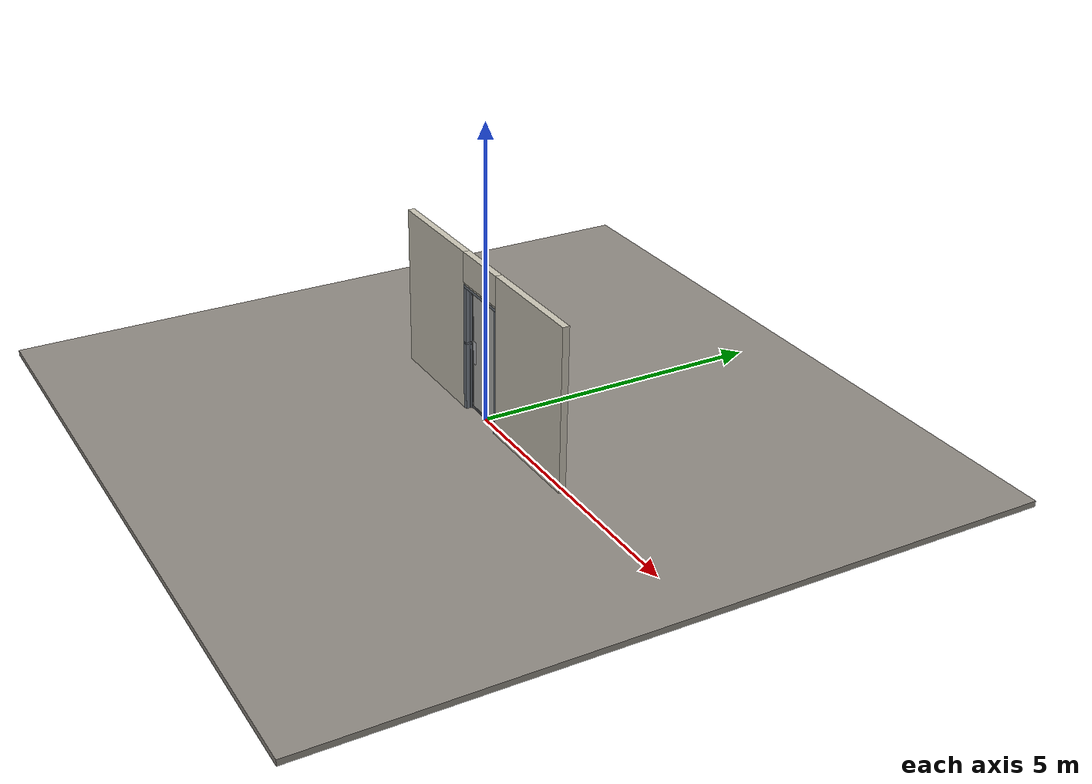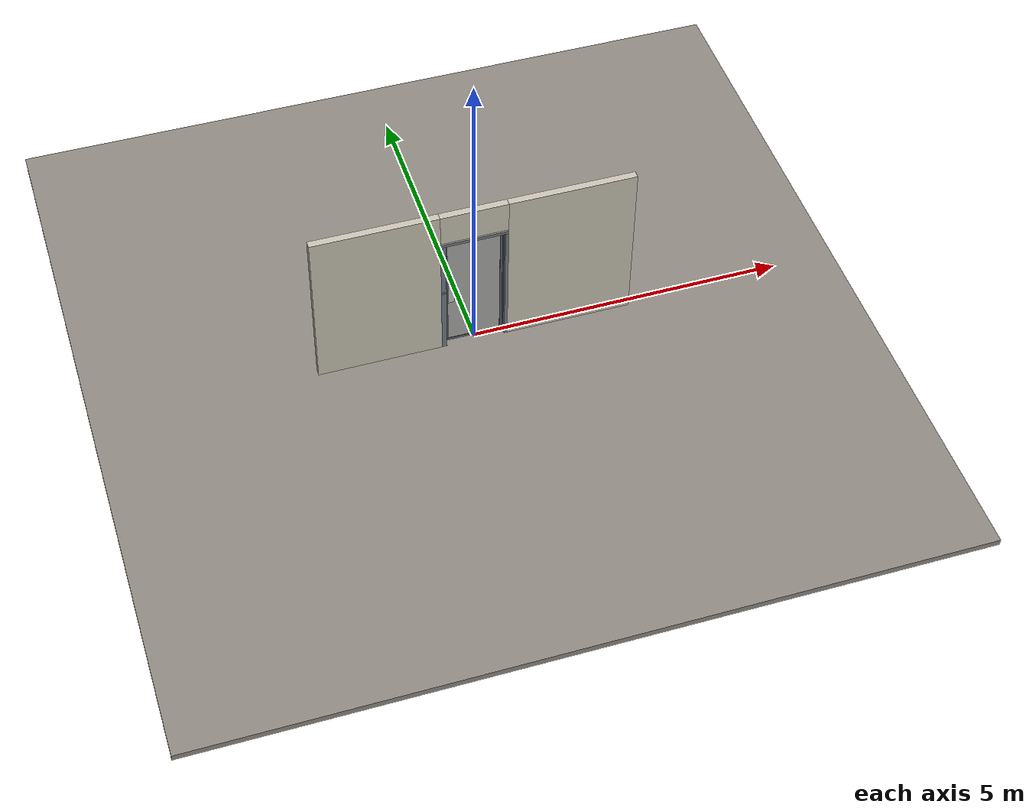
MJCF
<?xml version="1.0" ?>
<mujoco model="db0912_swing_single_minimal">
  <compiler angle="radian" meshdir="../../hardware" texturedir="../../textures" autolimits="true" inertiafromgeom="false"/>
  <option timestep="0.002" integrator="implicitfast" cone="elliptic" impratio="10" noslip_iterations="3">
    <flag multiccd="enable"/>
  </option>
  <size memory="16M"/>
  <default>
    <geom condim="4" solref="0.005 1" solimp="0.95 0.99 0.001"/>
    <joint solreflimit="0.005 1" solimplimit="0.95 0.99 0.001"/>
    <tendon solreflimit="0.005 1"/>
    <equality solref="0.002 1"/>
  </default>
  <visual>
    <headlight ambient="0.4 0.4 0.4" diffuse="0.7 0.7 0.7" specular="0.2 0.2 0.2"/>
    <quality shadowsize="4096"/>
    <map znear="0.01" zfar="60"/>
  </visual>
  <asset>
    <material name="mat_floor" rgba="0.55 0.53 0.5 1" specular="0.2" shininess="0.15" reflectance="0"/>
    <material name="mat_wall" rgba="0.78 0.76 0.7 1" specular="0.2" shininess="0.1" reflectance="0"/>
    <material name="mat_leaf" rgba="0.35 0.36 0.38 1" specular="0.68" shininess="0.4" reflectance="0.32"/>
    <material name="mat_mesh_infill" rgba="0.6 0.62 0.64 0.55" specular="0.68" shininess="0.3" reflectance="0.1"/>
    <material name="mat_hinge" rgba="0.45 0.3 0.22 1" specular="0.5" shininess="0.1" reflectance="0.2"/>
    <material name="mat_op_stainless" rgba="0.75 0.76 0.77 1" specular="0.8" shininess="0.65" reflectance="0.4"/>
    <material name="mat_deadbolt" rgba="0.85 0.66 0.3 1" specular="0.8" shininess="0.75" reflectance="0.4"/>
    <material name="mat_frame" rgba="0.45 0.48 0.52 1" specular="0.32" shininess="0.6" reflectance="0.08"/>
    <material name="mat_seal" rgba="0.1 0.1 0.1 1" specular="0.2" shininess="0.1" reflectance="0"/>
    <material name="mat_closer" rgba="0.22 0.17 0.13 1" specular="0.8" shininess="0.6" reflectance="0.4"/>
    <material name="mat_kick" rgba="0.75 0.76 0.77 1" specular="0.8" shininess="0.65" reflectance="0.4"/>
    <material name="mat_sign" rgba="0.75 0.76 0.77 1" specular="0.8" shininess="0.65" reflectance="0.4"/>
    <texture name="skybox" type="skybox" builtin="gradient" rgb1="0.6 0.7 0.85" rgb2="0.9 0.92 0.95" width="256" height="256"/>
  </asset>
  <worldbody>
    <light name="sun" pos="1.5 -2.5 4" dir="-0.3 0.5 -0.8" directional="true" diffuse="0.8 0.8 0.8" specular="0.3 0.3 0.3" castshadow="true"/>
    <light name="fill" pos="-1.5 2.5 3" dir="0.3 -0.5 -0.7" directional="true" diffuse="0.35 0.35 0.4" castshadow="false"/>
    <camera name="robot_view" pos="0 -2.685312 1.812087" xyaxes="1 0 0 0 0.26963 0.962964" fovy="52"/>
    <camera name="far_view" pos="0 2.590313 1.812087" xyaxes="-1 0 0 0 -0.26963 0.962964" fovy="52"/>
    <camera name="iso" pos="-2.004737 -2.263262 2.234138" xyaxes="0.741536 -0.670913 0 0.242917 0.268487 0.932151" fovy="46"/>
    <camera name="detail_handle" pos="-0.174 -0.8475 1.32" xyaxes="0.97561 0.219512 0 -0.070934 0.315262 0.94635" fovy="38"/>
    <geom name="floor" type="box" size="6 6 0.05" pos="0 0 -0.05" material="mat_floor" group="0" contype="1" conaffinity="1" friction="0.8 0.005 0.0001" density="2400"/>
    <geom name="wall_left" type="box" size="0.98 0.0575 1.3735" pos="-1.52 -0.0475 1.3735" material="mat_wall" group="0" contype="1" conaffinity="1" friction="0.6 0.005 0.0001" density="800"/>
    <geom name="wall_right" type="box" size="0.995 0.0575 1.3735" pos="1.505 -0.0475 1.3735" material="mat_wall" group="0" contype="1" conaffinity="1" friction="0.6 0.005 0.0001" density="800"/>
    <geom name="wall_header" type="box" size="0.525 0.0575 0.26" pos="-0.015 -0.0475 2.487" material="mat_wall" group="0" contype="1" conaffinity="1" friction="0.6 0.005 0.0001" density="800"/>
    <geom name="jamb_hinge" type="box" size="0.025 0.0575 1.0735" pos="0.485 -0.0475 1.0735" material="mat_frame" group="0" contype="1" conaffinity="1" friction="0.6 0.005 0.0001" density="300"/>
    <geom name="strike_1180_wall_n" type="box" size="0.04 0.04775 0.0155" pos="-0.5 -0.05725 1.18" material="mat_frame" group="0" contype="1" conaffinity="1" friction="0.6 0.005 0.0001" density="300"/>
    <geom name="strike_1180_wall_p" type="box" size="0.0157 0.003 0.0155" pos="-0.4757 0.0125 1.18" material="mat_frame" group="0" contype="1" conaffinity="1" friction="0.6 0.005 0.0001" density="300"/>
    <geom name="strike_1180_back" type="box" size="0.0253 0.0095 0.0155" pos="-0.5147 0 1.18" material="mat_frame" group="0" contype="1" conaffinity="1" friction="0.6 0.005 0.0001" density="300"/>
    <geom name="jamb_strike_0" type="box" size="0.04 0.0575 0.58225" pos="-0.5 -0.0475 0.58225" material="mat_frame" group="0" contype="1" conaffinity="1" friction="0.6 0.005 0.0001" density="300"/>
    <geom name="jamb_strike_1" type="box" size="0.04 0.0575 0.47575" pos="-0.5 -0.0475 1.67125" material="mat_frame" group="0" contype="1" conaffinity="1" friction="0.6 0.005 0.0001" density="300"/>
    <geom name="jamb_head" type="box" size="0.525 0.0575 0.025" pos="-0.015 -0.0475 2.172" material="mat_frame" group="0" contype="1" conaffinity="1" friction="0.6 0.005 0.0001" density="300"/>
    <geom name="head_stud" type="box" size="0.525 0.0575 0.015" pos="-0.015 -0.0475 2.212" material="mat_wall" group="0" contype="1" conaffinity="1" friction="0.6 0.005 0.0001" density="500"/>
    <geom name="stop_hinge" type="box" size="0.0055 0.016 1.0735" pos="0.4545 -0.0195 1.0735" material="mat_frame" group="0" contype="1" conaffinity="1" friction="0.6 0.005 0.0001" density="300"/>
    <geom name="stop_strike" type="box" size="0.0055 0.016 0.57625" pos="-0.4545 -0.0195 0.57625" material="mat_frame" group="0" contype="1" conaffinity="1" friction="0.6 0.005 0.0001" density="300"/>
    <geom name="stop_strike_1" type="box" size="0.0055 0.016 0.46975" pos="-0.4545 -0.0195 1.67725" material="mat_frame" group="0" contype="1" conaffinity="1" friction="0.6 0.005 0.0001" density="300"/>
    <geom name="stop_head" type="box" size="0.46 0.016 0.0055" pos="0 -0.0195 2.1415" material="mat_frame" group="0" contype="1" conaffinity="1" friction="0.6 0.005 0.0001" density="300"/>
    <site name="approach_point" pos="0 -1.5 0" quat="1 0 0 0" size="0.05" rgba="0.2 0.9 0.2 0.5" group="4"/>
    <site name="goal_point" pos="0 1.5 0" quat="1 0 0 0" size="0.05" rgba="0.2 0.9 0.2 0.5" group="4"/>
    <site name="door_plane_center" pos="0 0 1.0735" quat="1 0 0 0" size="0.02" rgba="0.2 0.9 0.2 0.5" group="4"/>
    <body name="leaf" pos="0.46 0 0">
      <inertial pos="-0.463281 -0.000035 1.075664" mass="62.750816" quat="0.500139 -0.500052 -0.499949 -0.49986" diaginertia="4.40031884 23.600726404 28.000655565"/>
      <joint name="leaf_hinge" type="hinge" axis="0 0 -1" pos="-0.003 0.01 0" limited="true" range="0 1.745329" solreflimit="0.02 1" damping="12.268966" frictionloss="4.303505" stiffness="15.508058" springref="-1.827437" armature="0.02"/>
      <geom name="leaf_slab_col" type="box" size="0.457 0.003 1.067" pos="-0.46 0 1.076" material="mat_leaf" group="3" contype="1" conaffinity="1" rgba="0.8 0.3 0.3 0.25" friction="0.45 0.005 0.0001" density="1"/>
      <geom name="leaf_rail_b" type="box" size="0.457 0.003 0.0225" pos="-0.46 0 0.0315" material="mat_leaf" group="1" contype="0" conaffinity="0" density="1"/>
      <geom name="leaf_rail_t" type="box" size="0.457 0.003 0.0225" pos="-0.46 0 2.1205" material="mat_leaf" group="1" contype="0" conaffinity="0" density="1"/>
      <geom name="leaf_stile_h" type="box" size="0.0225 0.003 1.067" pos="-0.0255 0 1.076" material="mat_leaf" group="1" contype="0" conaffinity="0" density="1"/>
      <geom name="leaf_stile_l" type="box" size="0.0225 0.003 1.067" pos="-0.8945 0 1.076" material="mat_leaf" group="1" contype="0" conaffinity="0" density="1"/>
      <geom name="leaf_mesh" type="box" size="0.412 0.0015 1.022" pos="-0.46 0 1.076" material="mat_mesh_infill" group="1" contype="0" conaffinity="0" density="1"/>
      <geom name="leaf_push_plate_n" type="box" size="0.05 0.0008 0.2" pos="-0.812 -0.0038 1.04" material="mat_op_stainless" group="1" contype="0" conaffinity="0" density="7900"/>
      <site name="leaf_push_plate_push_n" pos="-0.812 -0.003 1.04" quat="1 0 0 0" size="0.012" rgba="0.2 0.9 0.2 0.5" group="4"/>
      <site name="leaf_edge_mid" pos="-0.917 0 1.067" quat="1 0 0 0" size="0.02" rgba="0.2 0.9 0.2 0.5" group="4"/>
    </body>
  </worldbody>
  <sensor>
    <jointpos name="leaf_hinge_pos" joint="leaf_hinge"/>
    <jointvel name="leaf_hinge_vel" joint="leaf_hinge"/>
  </sensor>
</mujoco>
